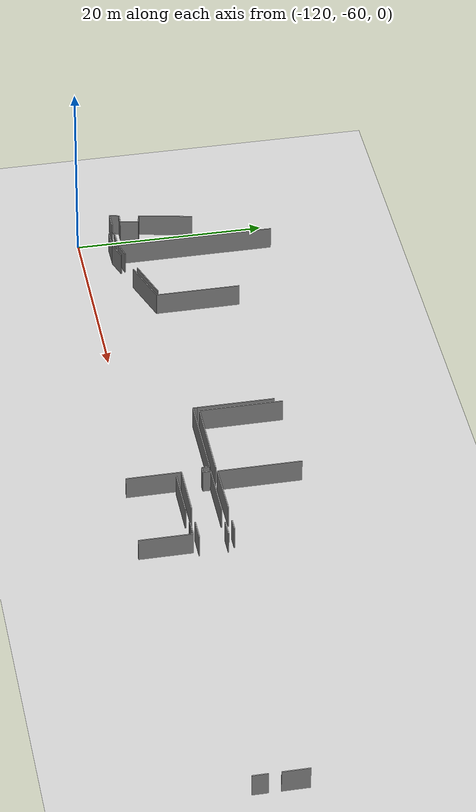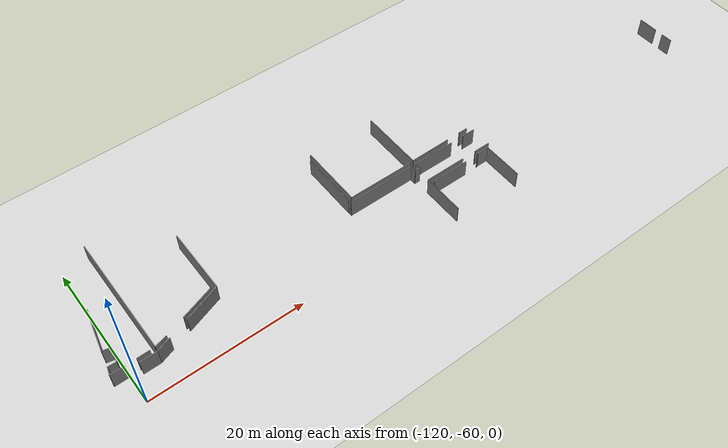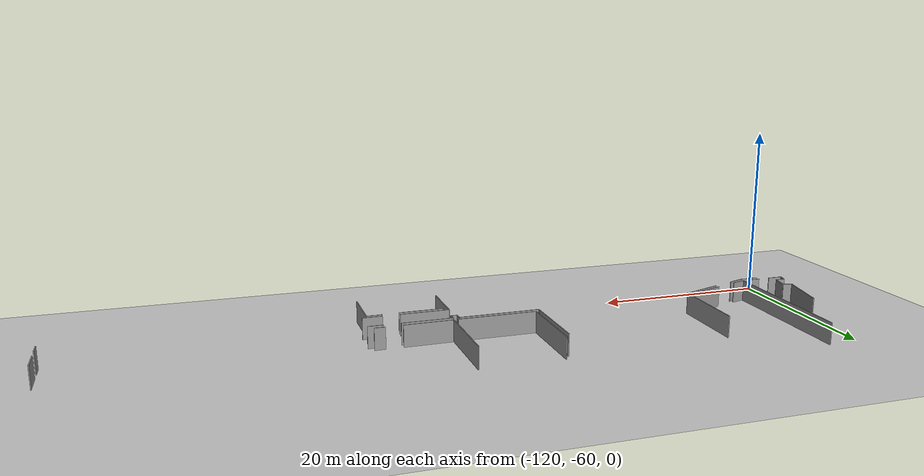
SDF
<sdf version="1.6">
 <world name="default">
  <model name="ground_plane">
   <static>1</static>
   <link name="link">
    <collision name="collision">
     <geometry><plane><normal>0 0 1</normal><size>100 100</size></plane></geometry>
     <surface><friction><ode><mu>100</mu><mu2>50</mu2></ode></friction></surface>
    </collision>
    <visual name="visual">
     <cast_shadows>0</cast_shadows>
     <geometry><plane><normal>0 0 1</normal><size>100 100</size></plane></geometry>
     <material>
      <script><uri>file://media/materials/scripts/gazebo.material</uri><name>Gazebo/Grey</name></script>
     </material>
    </visual>
   </link>
  </model>
  <model name="50036894">
   <static>1</static>
   <link name="Wall_0">
    <collision name="Wall_0_Collision">
     <geometry><box><size>1.03541084902 0.1 2.5</size></box></geometry>
     <pose>0.517705424509 0 1.25 0 0 0</pose>
    </collision>
    <visual name="Wall_0_Visual">
     <pose>0.517705424509 0 1.25 0 0 0</pose>
     <geometry><box><size>1.03541084902 0.1 2.5</size></box></geometry>
     <material>
      <script><uri>file://media/materials/scripts/gazebo.material</uri><name>Gazebo/Grey</name></script>
      <ambient>1 1 1 1</ambient>
     </material>
    </visual>
    <pose>0.918030292464 -123.576006949 0 0 0 1.31019393505</pose>
   </link>
   <link name="Wall_1">
    <collision name="Wall_1_Collision">
     <geometry><box><size>1.06831560757 0.1 2.5</size></box></geometry>
     <pose>0.534157803784 0 1.25 0 0 0</pose>
    </collision>
    <visual name="Wall_1_Visual">
     <pose>0.534157803784 0 1.25 0 0 0</pose>
     <geometry><box><size>1.06831560757 0.1 2.5</size></box></geometry>
     <material>
      <script><uri>file://media/materials/scripts/gazebo.material</uri><name>Gazebo/Grey</name></script>
      <ambient>1 1 1 1</ambient>
     </material>
    </visual>
    <pose>1.18481699624 -122.575556809 0 0 0 -0.0467814323597</pose>
   </link>
   <link name="Wall_2">
    <collision name="Wall_2_Collision">
     <geometry><box><size>1.94596305949 0.1 2.5</size></box></geometry>
     <pose>0.972981529745 0 1.25 0 0 0</pose>
    </collision>
    <visual name="Wall_2_Visual">
     <pose>0.972981529745 0 1.25 0 0 0</pose>
     <geometry><box><size>1.94596305949 0.1 2.5</size></box></geometry>
     <material>
      <script><uri>file://media/materials/scripts/gazebo.material</uri><name>Gazebo/Grey</name></script>
      <ambient>1 1 1 1</ambient>
     </material>
    </visual>
    <pose>2.25196381135 -122.625515917 0 0 0 1.37922802808</pose>
   </link>
   <link name="Wall_3">
    <collision name="Wall_3_Collision">
     <geometry><box><size>1.08139587809 0.1 2.5</size></box></geometry>
     <pose>0.540697939043 0 1.25 0 0 0</pose>
    </collision>
    <visual name="Wall_3_Visual">
     <pose>0.540697939043 0 1.25 0 0 0</pose>
     <geometry><box><size>1.08139587809 0.1 2.5</size></box></geometry>
     <material>
      <script><uri>file://media/materials/scripts/gazebo.material</uri><name>Gazebo/Grey</name></script>
      <ambient>1 1 1 1</ambient>
     </material>
    </visual>
    <pose>2.6224727222 -120.71515067 0 0 0 2.94019582732</pose>
   </link>
   <link name="Wall_4">
    <collision name="Wall_4_Collision">
     <geometry><box><size>5.82655653459 0.1 2.5</size></box></geometry>
     <pose>2.91327826729 0 1.25 0 0 0</pose>
    </collision>
    <visual name="Wall_4_Visual">
     <pose>2.91327826729 0 1.25 0 0 0</pose>
     <geometry><box><size>5.82655653459 0.1 2.5</size></box></geometry>
     <material>
      <script><uri>file://media/materials/scripts/gazebo.material</uri><name>Gazebo/Grey</name></script>
      <ambient>1 1 1 1</ambient>
     </material>
    </visual>
    <pose>1.56293389294 -120.498830272 0 0 0 1.37490308758</pose>
   </link>
   <link name="Wall_15">
    <collision name="Wall_15_Collision">
     <geometry><box><size>1.61148666398 0.1 2.5</size></box></geometry>
     <pose>0.805743331992 0 1.25 0 0 0</pose>
    </collision>
    <visual name="Wall_15_Visual">
     <pose>0.805743331992 0 1.25 0 0 0</pose>
     <geometry><box><size>1.61148666398 0.1 2.5</size></box></geometry>
     <material>
      <script><uri>file://media/materials/scripts/gazebo.material</uri><name>Gazebo/Grey</name></script>
      <ambient>1 1 1 1</ambient>
     </material>
    </visual>
    <pose>5.7125829746 -123.551154195 0 0 0 -3.12963225447</pose>
   </link>
   <link name="Wall_16">
    <collision name="Wall_16_Collision">
     <geometry><box><size>1.80081889307 0.1 2.5</size></box></geometry>
     <pose>0.900409446535 0 1.25 0 0 0</pose>
    </collision>
    <visual name="Wall_16_Visual">
     <pose>0.900409446535 0 1.25 0 0 0</pose>
     <geometry><box><size>1.80081889307 0.1 2.5</size></box></geometry>
     <material>
      <script><uri>file://media/materials/scripts/gazebo.material</uri><name>Gazebo/Grey</name></script>
      <ambient>1 1 1 1</ambient>
     </material>
    </visual>
    <pose>2.71884054296 -123.570427759 0 0 0 -3.13849450831</pose>
   </link>
   <link name="Wall_17">
    <collision name="Wall_17_Collision">
     <geometry><box><size>16.6696041945 0.1 2.5</size></box></geometry>
     <pose>8.33480209727 0 1.25 0 0 0</pose>
    </collision>
    <visual name="Wall_17_Visual">
     <pose>8.33480209727 0 1.25 0 0 0</pose>
     <geometry><box><size>16.6696041945 0.1 2.5</size></box></geometry>
     <material>
      <script><uri>file://media/materials/scripts/gazebo.material</uri><name>Gazebo/Grey</name></script>
      <ambient>1 1 1 1</ambient>
     </material>
    </visual>
    <pose>6.3514001864 -123.503477484 0 0 0 1.57079632679</pose>
   </link>
   <link name="Wall_21">
    <collision name="Wall_21_Collision">
     <geometry><box><size>4.59279391636 0.1 2.5</size></box></geometry>
     <pose>2.29639695818 0 1.25 0 0 0</pose>
    </collision>
    <visual name="Wall_21_Visual">
     <pose>2.29639695818 0 1.25 0 0 0</pose>
     <geometry><box><size>4.59279391636 0.1 2.5</size></box></geometry>
     <material>
      <script><uri>file://media/materials/scripts/gazebo.material</uri><name>Gazebo/Grey</name></script>
      <ambient>1 1 1 1</ambient>
     </material>
    </visual>
    <pose>14.9585681771 -120.702977892 0 0 0 -2.81343383336</pose>
   </link>
   <link name="Wall_22">
    <collision name="Wall_22_Collision">
     <geometry><box><size>1.70644484447 0.1 2.5</size></box></geometry>
     <pose>0.853222422237 0 1.25 0 0 0</pose>
    </collision>
    <visual name="Wall_22_Visual">
     <pose>0.853222422237 0 1.25 0 0 0</pose>
     <geometry><box><size>1.70644484447 0.1 2.5</size></box></geometry>
     <material>
      <script><uri>file://media/materials/scripts/gazebo.material</uri><name>Gazebo/Grey</name></script>
      <ambient>1 1 1 1</ambient>
     </material>
    </visual>
    <pose>7.99878272226 -123.058410311 0 0 0 -2.87772586601</pose>
   </link>
   <link name="Wall_25">
    <collision name="Wall_25_Collision">
     <geometry><box><size>2.1929576048 0.1 2.5</size></box></geometry>
     <pose>1.0964788024 0 1.25 0 0 0</pose>
    </collision>
    <visual name="Wall_25_Visual">
     <pose>1.0964788024 0 1.25 0 0 0</pose>
     <geometry><box><size>2.1929576048 0.1 2.5</size></box></geometry>
     <material>
      <script><uri>file://media/materials/scripts/gazebo.material</uri><name>Gazebo/Grey</name></script>
      <ambient>1 1 1 1</ambient>
     </material>
    </visual>
    <pose>4.10121157175 -124.16131466 0 0 0 0.00867331089771</pose>
   </link>
   <link name="Wall_26">
    <collision name="Wall_26_Collision">
     <geometry><box><size>1.96582859404 0.1 2.5</size></box></geometry>
     <pose>0.98291429702 0 1.25 0 0 0</pose>
    </collision>
    <visual name="Wall_26_Visual">
     <pose>0.98291429702 0 1.25 0 0 0</pose>
     <geometry><box><size>1.96582859404 0.1 2.5</size></box></geometry>
     <material>
      <script><uri>file://media/materials/scripts/gazebo.material</uri><name>Gazebo/Grey</name></script>
      <ambient>1 1 1 1</ambient>
     </material>
    </visual>
    <pose>6.294086693 -124.142294695 0 0 0 0.330970267043</pose>
   </link>
   <link name="Wall_27">
    <collision name="Wall_27_Collision">
     <geometry><box><size>5.08801261323 0.1 2.5</size></box></geometry>
     <pose>2.54400630662 0 1.25 0 0 0</pose>
    </collision>
    <visual name="Wall_27_Visual">
     <pose>2.54400630662 0 1.25 0 0 0</pose>
     <geometry><box><size>5.08801261323 0.1 2.5</size></box></geometry>
     <material>
      <script><uri>file://media/materials/scripts/gazebo.material</uri><name>Gazebo/Grey</name></script>
      <ambient>1 1 1 1</ambient>
     </material>
    </visual>
    <pose>10.764539178 -122.631602305 0 0 0 0.335889179357</pose>
   </link>
   <link name="Wall_28">
    <collision name="Wall_28_Collision">
     <geometry><box><size>8.88891706661 0.1 2.5</size></box></geometry>
     <pose>4.44445853331 0 1.25 0 0 0</pose>
    </collision>
    <visual name="Wall_28_Visual">
     <pose>4.44445853331 0 1.25 0 0 0</pose>
     <geometry><box><size>8.88891706661 0.1 2.5</size></box></geometry>
     <material>
      <script><uri>file://media/materials/scripts/gazebo.material</uri><name>Gazebo/Grey</name></script>
      <ambient>1 1 1 1</ambient>
     </material>
    </visual>
    <pose>15.5682214431 -120.954548625 0 0 0 1.57079632679</pose>
   </link>
   <link name="Wall_56">
    <collision name="Wall_56_Collision">
     <geometry><box><size>2.24917421654 0.1 2.5</size></box></geometry>
     <pose>1.12458710827 0 1.25 0 0 0</pose>
    </collision>
    <visual name="Wall_56_Visual">
     <pose>1.12458710827 0 1.25 0 0 0</pose>
     <geometry><box><size>2.24917421654 0.1 2.5</size></box></geometry>
     <material>
      <script><uri>file://media/materials/scripts/gazebo.material</uri><name>Gazebo/Grey</name></script>
      <ambient>1 1 1 1</ambient>
     </material>
    </visual>
    <pose>53.9598932346 -123.441599199 0 0 0 3.14159265359</pose>
   </link>
   <link name="Wall_57">
    <collision name="Wall_57_Collision">
     <geometry><box><size>0.0 0.1 2.5</size></box></geometry>
     <pose>0.0 0 1.25 0 0 0</pose>
    </collision>
    <visual name="Wall_57_Visual">
     <pose>0.0 0 1.25 0 0 0</pose>
     <geometry><box><size>0.0 0.1 2.5</size></box></geometry>
     <material>
      <script><uri>file://media/materials/scripts/gazebo.material</uri><name>Gazebo/Grey</name></script>
      <ambient>1 1 1 1</ambient>
     </material>
    </visual>
    <pose>51.7107190181 -123.441599199 0 0 0 0.0</pose>
   </link>
   <link name="Wall_58">
    <collision name="Wall_58_Collision">
     <geometry><box><size>5.56777764393 0.1 2.5</size></box></geometry>
     <pose>2.78388882197 0 1.25 0 0 0</pose>
    </collision>
    <visual name="Wall_58_Visual">
     <pose>2.78388882197 0 1.25 0 0 0</pose>
     <geometry><box><size>5.56777764393 0.1 2.5</size></box></geometry>
     <material>
      <script><uri>file://media/materials/scripts/gazebo.material</uri><name>Gazebo/Grey</name></script>
      <ambient>1 1 1 1</ambient>
     </material>
    </visual>
    <pose>49.7077899435 -123.441599199 0 0 0 3.14159265359</pose>
   </link>
   <link name="Wall_59">
    <collision name="Wall_59_Collision">
     <geometry><box><size>5.62534473686 0.1 2.5</size></box></geometry>
     <pose>2.81267236843 0 1.25 0 0 0</pose>
    </collision>
    <visual name="Wall_59_Visual">
     <pose>2.81267236843 0 1.25 0 0 0</pose>
     <geometry><box><size>5.62534473686 0.1 2.5</size></box></geometry>
     <material>
      <script><uri>file://media/materials/scripts/gazebo.material</uri><name>Gazebo/Grey</name></script>
      <ambient>1 1 1 1</ambient>
     </material>
    </visual>
    <pose>44.1400122996 -123.441599199 0 0 0 -1.57079632679</pose>
   </link>
   <link name="Wall_92">
    <collision name="Wall_92_Collision">
     <geometry><box><size>7.99700752557 0.1 2.5</size></box></geometry>
     <pose>3.99850376278 0 1.25 0 0 0</pose>
    </collision>
    <visual name="Wall_92_Visual">
     <pose>3.99850376278 0 1.25 0 0 0</pose>
     <geometry><box><size>7.99700752557 0.1 2.5</size></box></geometry>
     <material>
      <script><uri>file://media/materials/scripts/gazebo.material</uri><name>Gazebo/Grey</name></script>
      <ambient>1 1 1 1</ambient>
     </material>
    </visual>
    <pose>34.5506533358 -120.074304662 0 0 0 1.57079632679</pose>
   </link>
   <link name="Wall_101">
    <collision name="Wall_101_Collision">
     <geometry><box><size>1.75744473115 0.1 2.5</size></box></geometry>
     <pose>0.878722365576 0 1.25 0 0 0</pose>
    </collision>
    <visual name="Wall_101_Visual">
     <pose>0.878722365576 0 1.25 0 0 0</pose>
     <geometry><box><size>1.75744473115 0.1 2.5</size></box></geometry>
     <material>
      <script><uri>file://media/materials/scripts/gazebo.material</uri><name>Gazebo/Grey</name></script>
      <ambient>1 1 1 1</ambient>
     </material>
    </visual>
    <pose>53.9819563936 -120.539659796 0 0 0 3.14159265359</pose>
   </link>
   <link name="Wall_102">
    <collision name="Wall_102_Collision">
     <geometry><box><size>5.75645569299 0.1 2.5</size></box></geometry>
     <pose>2.8782278465 0 1.25 0 0 0</pose>
    </collision>
    <visual name="Wall_102_Visual">
     <pose>2.8782278465 0 1.25 0 0 0</pose>
     <geometry><box><size>5.75645569299 0.1 2.5</size></box></geometry>
     <material>
      <script><uri>file://media/materials/scripts/gazebo.material</uri><name>Gazebo/Grey</name></script>
      <ambient>1 1 1 1</ambient>
     </material>
    </visual>
    <pose>50.2943656525 -120.539659796 0 0 0 3.14159265359</pose>
   </link>
   <link name="Wall_103">
    <collision name="Wall_103_Collision">
     <geometry><box><size>0.793259324538 0.1 2.5</size></box></geometry>
     <pose>0.396629662269 0 1.25 0 0 0</pose>
    </collision>
    <visual name="Wall_103_Visual">
     <pose>0.396629662269 0 1.25 0 0 0</pose>
     <geometry><box><size>0.793259324538 0.1 2.5</size></box></geometry>
     <material>
      <script><uri>file://media/materials/scripts/gazebo.material</uri><name>Gazebo/Grey</name></script>
      <ambient>1 1 1 1</ambient>
     </material>
    </visual>
    <pose>44.5379099595 -120.539659796 0 0 0 -1.57079632679</pose>
   </link>
   <link name="Wall_104">
    <collision name="Wall_104_Collision">
     <geometry><box><size>0.71058587831 0.1 2.5</size></box></geometry>
     <pose>0.355292939155 0 1.25 0 0 0</pose>
    </collision>
    <visual name="Wall_104_Visual">
     <pose>0.355292939155 0 1.25 0 0 0</pose>
     <geometry><box><size>0.71058587831 0.1 2.5</size></box></geometry>
     <material>
      <script><uri>file://media/materials/scripts/gazebo.material</uri><name>Gazebo/Grey</name></script>
      <ambient>1 1 1 1</ambient>
     </material>
    </visual>
    <pose>44.5379099595 -121.332919121 0 0 0 3.14159265359</pose>
   </link>
   <link name="Wall_105">
    <collision name="Wall_105_Collision">
     <geometry><box><size>0.812025689632 0.1 2.5</size></box></geometry>
     <pose>0.406012844816 0 1.25 0 0 0</pose>
    </collision>
    <visual name="Wall_105_Visual">
     <pose>0.406012844816 0 1.25 0 0 0</pose>
     <geometry><box><size>0.812025689632 0.1 2.5</size></box></geometry>
     <material>
      <script><uri>file://media/materials/scripts/gazebo.material</uri><name>Gazebo/Grey</name></script>
      <ambient>1 1 1 1</ambient>
     </material>
    </visual>
    <pose>43.8273240812 -121.332919121 0 0 0 1.57079632679</pose>
   </link>
   <link name="Wall_106">
    <collision name="Wall_106_Collision">
     <geometry><box><size>9.26525876662 0.1 2.5</size></box></geometry>
     <pose>4.63262938331 0 1.25 0 0 0</pose>
    </collision>
    <visual name="Wall_106_Visual">
     <pose>4.63262938331 0 1.25 0 0 0</pose>
     <geometry><box><size>9.26525876662 0.1 2.5</size></box></geometry>
     <material>
      <script><uri>file://media/materials/scripts/gazebo.material</uri><name>Gazebo/Grey</name></script>
      <ambient>1 1 1 1</ambient>
     </material>
    </visual>
    <pose>43.8273240812 -120.520893431 0 0 0 3.14159265359</pose>
   </link>
   <link name="Wall_107">
    <collision name="Wall_107_Collision">
     <geometry><box><size>0.411338434911 0.1 2.5</size></box></geometry>
     <pose>0.205669217455 0 1.25 0 0 0</pose>
    </collision>
    <visual name="Wall_107_Visual">
     <pose>0.205669217455 0 1.25 0 0 0</pose>
     <geometry><box><size>0.411338434911 0.1 2.5</size></box></geometry>
     <material>
      <script><uri>file://media/materials/scripts/gazebo.material</uri><name>Gazebo/Grey</name></script>
      <ambient>1 1 1 1</ambient>
     </material>
    </visual>
    <pose>34.5620653146 -120.520893431 0 0 0 1.57079632679</pose>
   </link>
   <link name="Wall_108">
    <collision name="Wall_108_Collision">
     <geometry><box><size>8.62441275859 0.1 2.5</size></box></geometry>
     <pose>4.3122063793 0 1.25 0 0 0</pose>
    </collision>
    <visual name="Wall_108_Visual">
     <pose>4.3122063793 0 1.25 0 0 0</pose>
     <geometry><box><size>8.62441275859 0.1 2.5</size></box></geometry>
     <material>
      <script><uri>file://media/materials/scripts/gazebo.material</uri><name>Gazebo/Grey</name></script>
      <ambient>1 1 1 1</ambient>
     </material>
    </visual>
    <pose>35.0786475537 -119.9462369 0 0 0 1.57079632679</pose>
   </link>
   <link name="Wall_114">
    <collision name="Wall_114_Collision">
     <geometry><box><size>9.0223380188 0.1 2.5</size></box></geometry>
     <pose>4.5111690094 0 1.25 0 0 0</pose>
    </collision>
    <visual name="Wall_114_Visual">
     <pose>4.5111690094 0 1.25 0 0 0</pose>
     <geometry><box><size>9.0223380188 0.1 2.5</size></box></geometry>
     <material>
      <script><uri>file://media/materials/scripts/gazebo.material</uri><name>Gazebo/Grey</name></script>
      <ambient>1 1 1 1</ambient>
     </material>
    </visual>
    <pose>44.1009579722 -119.968553658 0 0 0 3.13911915047</pose>
   </link>
   <link name="Wall_115">
    <collision name="Wall_115_Collision">
     <geometry><box><size>8.62669515435 0.1 2.5</size></box></geometry>
     <pose>4.31334757717 0 1.25 0 0 0</pose>
    </collision>
    <visual name="Wall_115_Visual">
     <pose>4.31334757717 0 1.25 0 0 0</pose>
     <geometry><box><size>8.62669515435 0.1 2.5</size></box></geometry>
     <material>
      <script><uri>file://media/materials/scripts/gazebo.material</uri><name>Gazebo/Grey</name></script>
      <ambient>1 1 1 1</ambient>
     </material>
    </visual>
    <pose>44.6101858251 -119.899828186 0 0 0 1.57079632679</pose>
   </link>
   <link name="Wall_119">
    <collision name="Wall_119_Collision">
     <geometry><box><size>1.23528330237 0.1 2.5</size></box></geometry>
     <pose>0.617641651187 0 1.25 0 0 0</pose>
    </collision>
    <visual name="Wall_119_Visual">
     <pose>0.617641651187 0 1.25 0 0 0</pose>
     <geometry><box><size>1.23528330237 0.1 2.5</size></box></geometry>
     <material>
      <script><uri>file://media/materials/scripts/gazebo.material</uri><name>Gazebo/Grey</name></script>
      <ambient>1 1 1 1</ambient>
     </material>
    </visual>
    <pose>53.4012134737 -119.845050688 0 0 0 3.14159265359</pose>
   </link>
   <link name="Wall_120">
    <collision name="Wall_120_Collision">
     <geometry><box><size>5.62434349439 0.1 2.5</size></box></geometry>
     <pose>2.8121717472 0 1.25 0 0 0</pose>
    </collision>
    <visual name="Wall_120_Visual">
     <pose>2.8121717472 0 1.25 0 0 0</pose>
     <geometry><box><size>5.62434349439 0.1 2.5</size></box></geometry>
     <material>
      <script><uri>file://media/materials/scripts/gazebo.material</uri><name>Gazebo/Grey</name></script>
      <ambient>1 1 1 1</ambient>
     </material>
    </visual>
    <pose>50.2342625643 -119.845050688 0 0 0 -3.13185314102</pose>
   </link>
   <link name="Wall_122">
    <collision name="Wall_122_Collision">
     <geometry><box><size>5.10470490525 0.1 2.5</size></box></geometry>
     <pose>2.55235245262 0 1.25 0 0 0</pose>
    </collision>
    <visual name="Wall_122_Visual">
     <pose>2.55235245262 0 1.25 0 0 0</pose>
     <geometry><box><size>5.10470490525 0.1 2.5</size></box></geometry>
     <material>
      <script><uri>file://media/materials/scripts/gazebo.material</uri><name>Gazebo/Grey</name></script>
      <ambient>1 1 1 1</ambient>
     </material>
    </visual>
    <pose>44.6195690076 -124.043644479 0 0 0 0.0</pose>
   </link>
   <link name="Wall_123">
    <collision name="Wall_123_Collision">
     <geometry><box><size>0.100932612265 0.1 2.5</size></box></geometry>
     <pose>0.0504663061327 0 1.25 0 0 0</pose>
    </collision>
    <visual name="Wall_123_Visual">
     <pose>0.0504663061327 0 1.25 0 0 0</pose>
     <geometry><box><size>0.100932612265 0.1 2.5</size></box></geometry>
     <material>
      <script><uri>file://media/materials/scripts/gazebo.material</uri><name>Gazebo/Grey</name></script>
      <ambient>1 1 1 1</ambient>
     </material>
    </visual>
    <pose>51.6754686836 -124.043644479 0 0 0 1.57079632679</pose>
   </link>
   <link name="Wall_124">
    <collision name="Wall_124_Collision">
     <geometry><box><size>1.71737600568 0.1 2.5</size></box></geometry>
     <pose>0.85868800284 0 1.25 0 0 0</pose>
    </collision>
    <visual name="Wall_124_Visual">
     <pose>0.85868800284 0 1.25 0 0 0</pose>
     <geometry><box><size>1.71737600568 0.1 2.5</size></box></geometry>
     <material>
      <script><uri>file://media/materials/scripts/gazebo.material</uri><name>Gazebo/Grey</name></script>
      <ambient>1 1 1 1</ambient>
     </material>
    </visual>
    <pose>51.6754686836 -123.942711867 0 0 0 0.0</pose>
   </link>
   <link name="Wall_125">
    <collision name="Wall_125_Collision">
     <geometry><box><size>5.4518826595 0.1 2.5</size></box></geometry>
     <pose>2.72594132975 0 1.25 0 0 0</pose>
    </collision>
    <visual name="Wall_125_Visual">
     <pose>2.72594132975 0 1.25 0 0 0</pose>
     <geometry><box><size>5.4518826595 0.1 2.5</size></box></geometry>
     <material>
      <script><uri>file://media/materials/scripts/gazebo.material</uri><name>Gazebo/Grey</name></script>
      <ambient>1 1 1 1</ambient>
     </material>
    </visual>
    <pose>53.3928446893 -123.942711867 0 0 0 -1.57079632679</pose>
   </link>
   <link name="Wall_152">
    <collision name="Wall_152_Collision">
     <geometry><box><size>2.73456371371 0.1 2.5</size></box></geometry>
     <pose>1.36728185686 0 1.25 0 0 0</pose>
    </collision>
    <visual name="Wall_152_Visual">
     <pose>1.36728185686 0 1.25 0 0 0</pose>
     <geometry><box><size>2.73456371371 0.1 2.5</size></box></geometry>
     <material>
      <script><uri>file://media/materials/scripts/gazebo.material</uri><name>Gazebo/Grey</name></script>
      <ambient>1 1 1 1</ambient>
     </material>
    </visual>
    <pose>86.675246784 -119.140551199 0 0 0 -1.57079632679</pose>
   </link>
   <link name="Wall_153">
    <collision name="Wall_153_Collision">
     <geometry><box><size>1.57612106841 0.1 2.5</size></box></geometry>
     <pose>0.788060534207 0 1.25 0 0 0</pose>
    </collision>
    <visual name="Wall_153_Visual">
     <pose>0.788060534207 0 1.25 0 0 0</pose>
     <geometry><box><size>1.57612106841 0.1 2.5</size></box></geometry>
     <material>
      <script><uri>file://media/materials/scripts/gazebo.material</uri><name>Gazebo/Grey</name></script>
      <ambient>1 1 1 1</ambient>
     </material>
    </visual>
    <pose>86.675246784 -123.060185508 0 0 0 -1.57079632679</pose>
   </link>
   <pose>-122.8 67.3347215794 0 0 0 0</pose>
  </model>
 </world>
</sdf>
